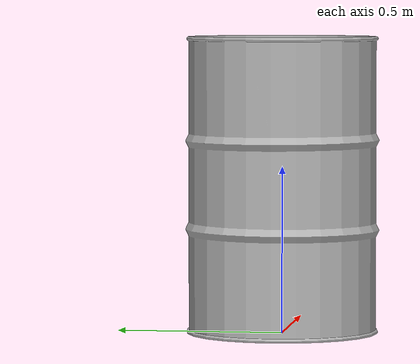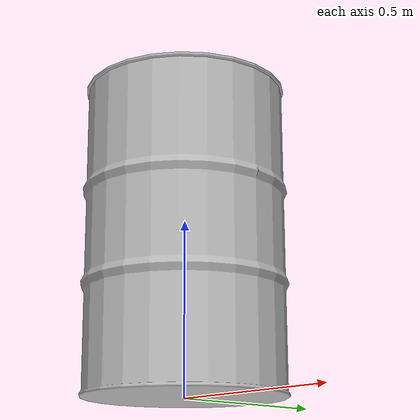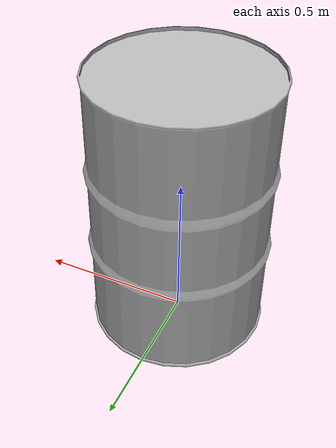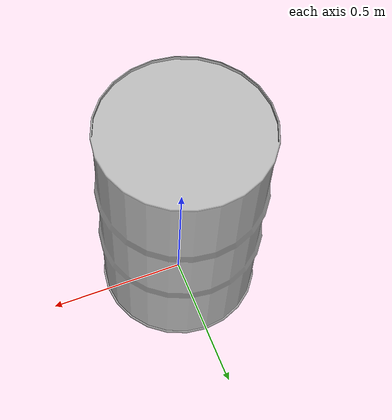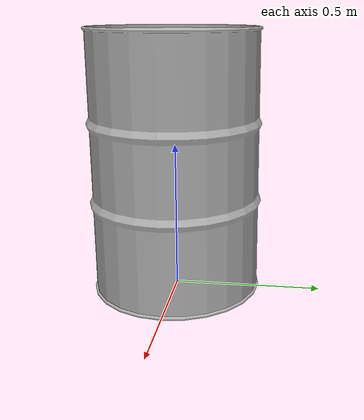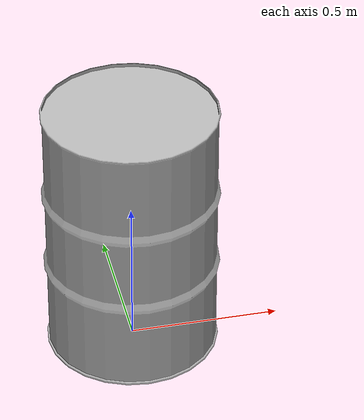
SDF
<?xml version="1.0"?>
<sdf version="1.4">
  <model name="barrel1">
    <static>true</static>
    <link name="link">
      <collision name="collision">
        <geometry>
          <mesh>
		<uri>model://barrel1/models/barrel1.dae</uri>
          </mesh>
        </geometry>
      </collision>
      <visual name="visual">
         <geometry>
          <mesh>
		<uri>model://barrel1/models/barrel1.dae</uri>
          </mesh>
        </geometry>
      </visual>
    </link>
  </model>
</sdf>
